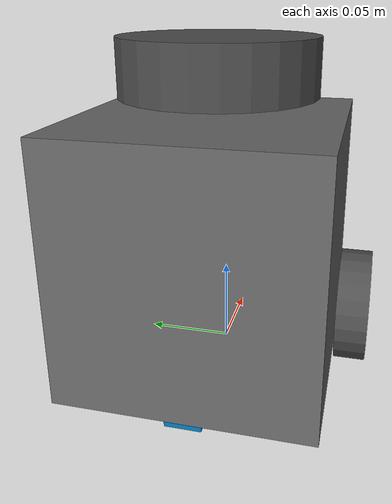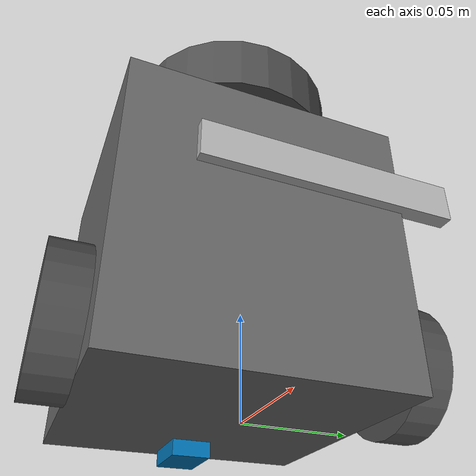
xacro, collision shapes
<robot xmlns:xacro="http://www.ros.org/wiki/xacro"  name="burger">
  <xacro:arg name="entity_name" default="burger"/>
  <xacro:include filename="$(find final_project)/urdf/burger.xacro" />
  <xacro:include filename="$(find final_project)/urdf/imu.xacro" />
  <xacro:include filename="$(find final_project)/urdf/camera.xacro" />
  <xacro:include filename="$(find final_project)/urdf/turtlebot3_plugin_burger.xacro" />

  <!-- uncomment the next two lines if only spawn burger! -->

  <xacro:burger prefix="$(arg entity_name)"/>
  <xacro:waffle_imu prefix="$(arg entity_name)"/>
  <xacro:waffle_camera prefix="$(arg entity_name)"/>
  <xacro:turtlebot3_plugin entity_name="$(arg entity_name)">
    <wheel_separation>0.160</wheel_separation>
  </xacro:turtlebot3_plugin>

</robot>

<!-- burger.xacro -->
<robot xmlns:xacro="http://www.ros.org/wiki/xacro">
  <xacro:macro name="burger" params="prefix">
    <!-- Init colour -->
    <material name="black">
        <color rgba="0.0 0.0 0.0 1.0"/>
    </material>

    <material name="dark">
        <color rgba="0.3 0.3 0.3 1.0"/>
    </material>

    <material name="light_black">
        <color rgba="0.4 0.4 0.4 1.0"/>
    </material>

    <material name="blue">
        <color rgba="0.0 0.0 0.8 1.0"/>
    </material>

    <material name="green">
        <color rgba="0.0 0.8 0.0 1.0"/>
    </material>

    <material name="grey">
        <color rgba="0.5 0.5 0.5 1.0"/>
    </material>

    <material name="orange">
        <color rgba="1.0 0.4235 0.0392 1.0"/>
    </material>

    <material name="brown">
        <color rgba="0.8706 0.8118 0.7647 1.0"/>
    </material>

    <material name="red">
        <color rgba="0.8 0.0 0.0 1.0"/>
    </material>

    <material name="white">
        <color rgba="1.0 1.0 1.0 1.0"/>
    </material>

    <link name="base_footprint"/>

    <joint name="base_joint" type="fixed">
      <parent link="base_footprint"/>
      <child link="base_link"/>
      <origin xyz="0.0 0.0 0.010" rpy="0 0 0"/>
    </joint>

    <link name="base_link">
      <visual>
        <origin xyz="-0.032 0 0.0" rpy="0 0 0"/>
        <geometry>
          <mesh filename="file://$(find final_project)/models/turtlebot3_common/meshes/burger_base.dae" scale="0.001 0.001 0.001"/>
        </geometry>
        <material name="light_black"/>
      </visual>

      <collision>
        <origin xyz="-0.032 0 0.070" rpy="0 0 0"/>
        <geometry>
          <box size="0.140 0.140 0.143"/>
        </geometry>
      </collision>

      <inertial>
        <origin xyz="0 0 0" rpy="0 0 0"/>
        <mass value="8.2573504e-01"/>
        <inertia ixx="2.2124416e-03" ixy="-1.2294101e-05" ixz="3.4938785e-05" iyy="2.1193702e-03" iyz="-5.0120904e-06" izz="2.0064271e-03" />
      </inertial>
    </link>

    <joint name="wheel_left_joint" type="continuous">
      <parent link="base_link"/>
      <child link="wheel_left_link"/>
      <origin xyz="0.0 0.08 0.023" rpy="-1.57 0 0"/>
      <axis xyz="0 0 1"/>
    </joint>

    <link name="wheel_left_link">
      <visual>
        <origin xyz="0 0 0" rpy="1.57 0 0"/>
        <geometry>
          <mesh filename="file://$(find final_project)/models/turtlebot3_common/meshes/tire.dae" scale="0.001 0.001 0.001"/>
        </geometry>
        <material name="dark"/>
      </visual>

      <collision>
        <origin xyz="0 0 0" rpy="0 0 0"/>
        <geometry>
          <cylinder length="0.018" radius="0.033"/>
        </geometry>
      </collision>

      <inertial>
        <origin xyz="0 0 0" />
        <mass value="2.8498940e-02" />
        <inertia ixx="1.1175580e-05" ixy="-4.2369783e-11" ixz="-5.9381719e-09" iyy="1.1192413e-05" iyz="-1.4400107e-11" izz="2.0712558e-05" />
      </inertial>
    </link>

    <joint name="wheel_right_joint" type="continuous">
      <parent link="base_link"/>
      <child link="wheel_right_link"/>
      <origin xyz="0.0 -0.080 0.023" rpy="-1.57 0 0"/>
      <axis xyz="0 0 1"/>
    </joint>

    <link name="wheel_right_link">
      <visual>
        <origin xyz="0 0 0" rpy="1.57 0 0"/>
        <geometry>
          <mesh filename="file://$(find final_project)/models/turtlebot3_common/meshes/tire.dae" scale="0.001 0.001 0.001"/>
        </geometry>
        <material name="dark"/>
      </visual>

      <collision>
        <origin xyz="0 0 0" rpy="0 0 0"/>
        <geometry>
          <cylinder length="0.018" radius="0.033"/>
        </geometry>
      </collision>

      <inertial>
        <origin xyz="0 0 0" />
        <mass value="2.8498940e-02" />
        <inertia ixx="1.1175580e-05" ixy="-4.2369783e-11" ixz="-5.9381719e-09" iyy="1.1192413e-05" iyz="-1.4400107e-11" izz="2.0712558e-05" />
      </inertial>
    </link>

    <joint name="caster_back_joint" type="fixed">
      <parent link="base_link"/>
      <child link="caster_back_link"/>
      <origin xyz="-0.081 0 -0.004" rpy="-1.57 0 0"/>
    </joint>

    <link name="caster_back_link">
      <collision>
        <origin xyz="0 0.001 0" rpy="0 0 0"/>
        <geometry>
          <box size="0.030 0.009 0.020"/>
        </geometry>
      </collision>

      <inertial>
        <origin xyz="0 0 0" />
        <mass value="0.005" />
        <inertia ixx="0.001" ixy="0.0" ixz="0.0" iyy="0.001" iyz="0.0" izz="0.001" />
      </inertial>
    </link>

    <joint name="imu_joint" type="fixed">
      <parent link="base_link"/>
      <child link="imu_link"/>
      <origin xyz="-0.032 0 0.068" rpy="0 0 0"/>
    </joint>

    <link name="imu_link"/>

    <joint name="scan_joint" type="fixed">
      <parent link="base_link"/>
      <child link="base_scan"/>
      <origin xyz="-0.032 0 0.172" rpy="0 0 0"/>
    </joint>

    <link name="base_scan">
      <visual>
        <origin xyz="0 0 0.0" rpy="0 0 0"/>
        <geometry>
          <mesh filename="file://$(find final_project)/models/turtlebot3_common/meshes/lds.dae" scale="0.001 0.001 0.001"/>
        </geometry>
        <material name="dark"/>
      </visual>

      <collision>
        <origin xyz="0.015 0 -0.0065" rpy="0 0 0"/>
        <geometry>
          <cylinder length="0.0315" radius="0.055"/>
        </geometry>
      </collision>

      <inertial>
        <mass value="0.114" />
        <origin xyz="0 0 0" />
        <inertia ixx="0.001" ixy="0.0" ixz="0.0" iyy="0.001" iyz="0.0" izz="0.001" />
      </inertial>
    </link>

    <joint name="camera_joint" type="fixed">
        <origin xyz="0.036 -0.035 0.094" rpy="0 0 0"/>
        <parent link="base_link"/>
        <child link="camera_link"/>
    </joint>

    <!-- burger camera customization -->
    <link name="camera_link">
        <visual>
        <origin xyz="0 0 0" rpy="1.57 0 1.57"/>
        <geometry>
        <mesh filename="file://$(find final_project)/models/turtlebot3_common/meshes/r200.dae" scale="0.5 0.5 0.5"/>
        </geometry>
        </visual>
        <collision>
        <origin xyz="0.003 0.065 0.007" rpy="0 0 0"/>
        <geometry>
            <box size="0.008 0.132 0.020"/>
        </geometry>
        </collision>

        <!-- This inertial field needs doesn't contain reliable data!! -->
    </link>

    <joint name="camera_rgb_joint" type="fixed">
        <origin xyz="0.005 0.018 0.013" rpy="0 0 0"/>
        <parent link="camera_link"/>
        <child link="camera_rgb_frame"/>
    </joint>
    <link name="camera_rgb_frame">
    </link>

    <joint name="camera_rgb_optical_joint" type="fixed">
        <origin xyz="0 0 0" rpy="-1.57 0 -1.57"/>
        <parent link="camera_rgb_frame"/>
        <child link="camera_rgb_optical_frame"/>
    </joint>
    <link name="camera_rgb_optical_frame"/>

    <joint name="camera_depth_joint" type="fixed">
        <origin xyz="0.005 0.028 0.013" rpy="0 0 0"/>
        <parent link="camera_link"/>
        <child link="camera_depth_frame"/>
    </joint>
    <link name="camera_depth_frame"/>

    <joint name="camera_depth_optical_joint" type="fixed">
        <origin xyz="0 0 0" rpy="-1.57 0 -1.57"/>
        <parent link="camera_depth_frame"/>
        <child link="camera_depth_optical_frame"/>
    </joint>
    <link name="camera_depth_optical_frame"/>
  </xacro:macro>
</robot>
